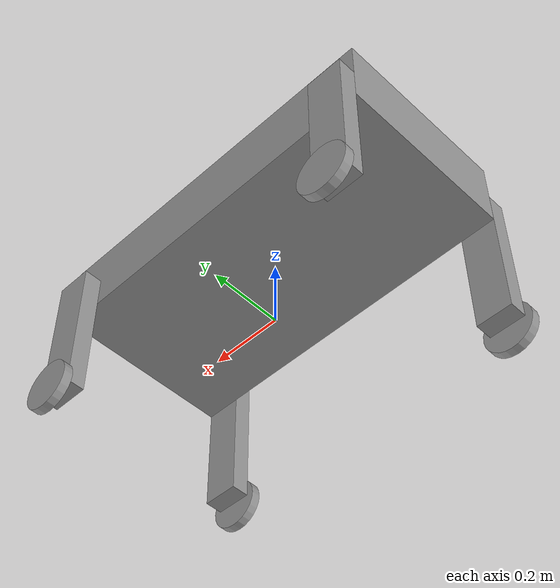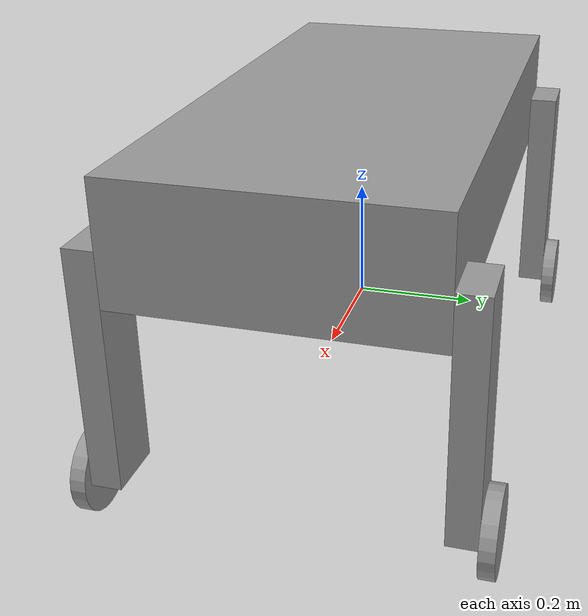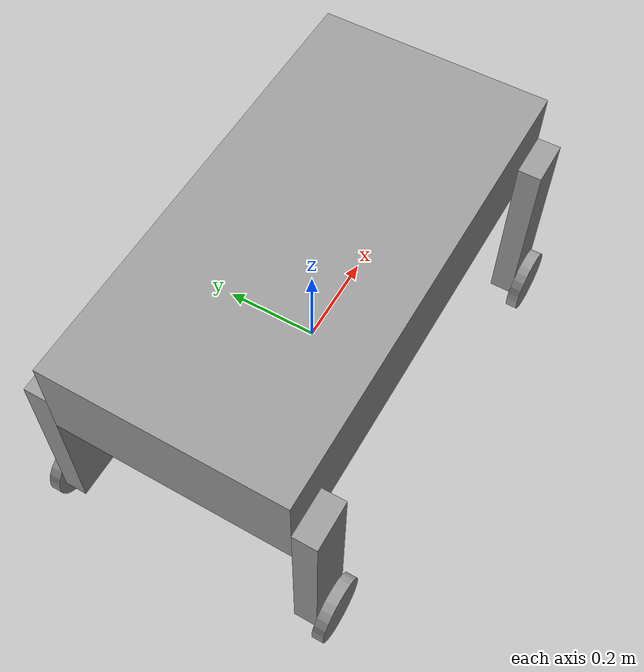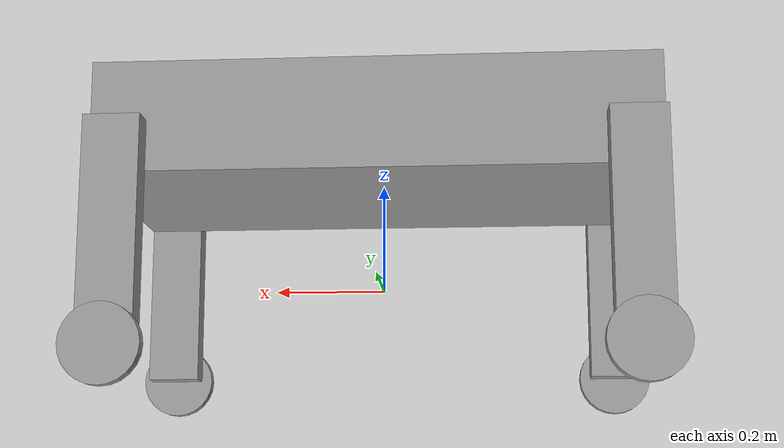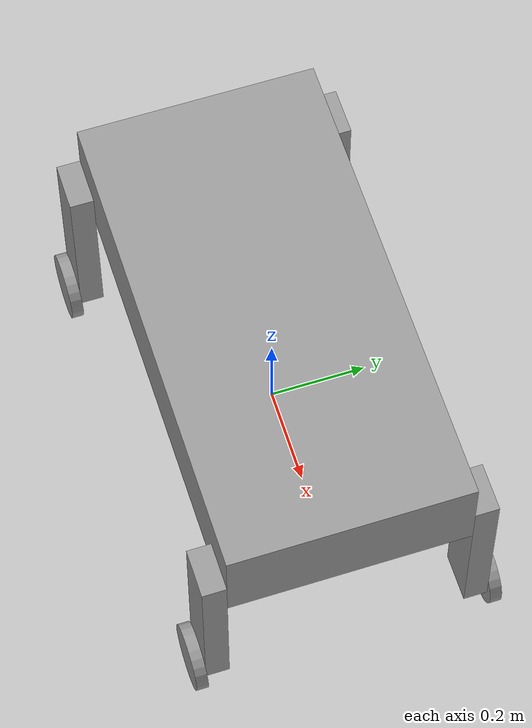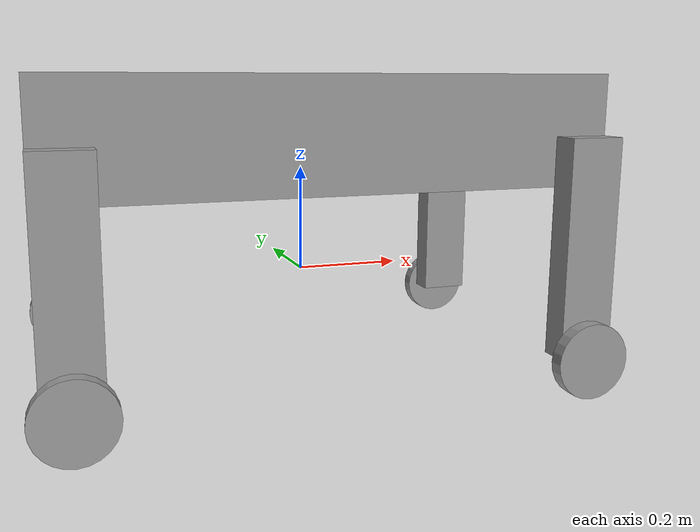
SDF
<?xml version='1.0'?>
<sdf version='1.6'>
  <model name='mybot'>
    <link name='link_0'>
      <pose frame=''>-1e-06 2e-06 0.2754 0 -0 0</pose>
      <inertial>
        <mass>1</mass>
        <inertia>
          <ixx>0.166667</ixx>
          <ixy>0</ixy>
          <ixz>0</ixz>
          <iyy>0.166667</iyy>
          <iyz>0</iyz>
          <izz>0.166667</izz>
        </inertia>
        <pose frame=''>0 0 0 0 -0 0</pose>
      </inertial>
      <gravity>1</gravity>
      <self_collide>0</self_collide>
      <kinematic>0</kinematic>
      <visual name='visual'>
        <pose frame=''>0 0 0 0 -0 0</pose>
        <geometry>
          <box>
            <size>1 0.5 0.2</size>
          </box>
        </geometry>
        <material>
          <lighting>1</lighting>
          <script>
            <uri>file://media/materials/scripts/gazebo.material</uri>
            <name>Gazebo/Grey</name>
          </script>
          <shader type='pixel'>
            <normal_map>__default__</normal_map>
          </shader>
          <ambient>0.3 0.3 0.3 1</ambient>
          <diffuse>0.7 0.7 0.7 1</diffuse>
          <specular>0.01 0.01 0.01 1</specular>
          <emissive>0 0 0 1</emissive>
        </material>
        <transparency>0</transparency>
        <cast_shadows>1</cast_shadows>
      </visual>
      <collision name='collision'>
        <laser_retro>0</laser_retro>
        <max_contacts>10</max_contacts>
        <pose frame=''>0 0 0 0 -0 0</pose>
        <geometry>
          <box>
            <size>1 0.5 0.2</size>
          </box>
        </geometry>
        <surface>
          <friction>
            <ode>
              <mu>1</mu>
              <mu2>1</mu2>
              <fdir1>0 0 0</fdir1>
              <slip1>0</slip1>
              <slip2>0</slip2>
            </ode>
            <torsional>
              <coefficient>1</coefficient>
              <patch_radius>0</patch_radius>
              <surface_radius>0</surface_radius>
              <use_patch_radius>1</use_patch_radius>
              <ode>
                <slip>0</slip>
              </ode>
            </torsional>
          </friction>
          <bounce>
            <restitution_coefficient>0</restitution_coefficient>
            <threshold>1e+06</threshold>
          </bounce>
          <contact>
            <collide_without_contact>0</collide_without_contact>
            <collide_without_contact_bitmask>1</collide_without_contact_bitmask>
            <collide_bitmask>1</collide_bitmask>
            <ode>
              <soft_cfm>0</soft_cfm>
              <soft_erp>0.2</soft_erp>
              <kp>1e+13</kp>
              <kd>1</kd>
              <max_vel>0.01</max_vel>
              <min_depth>0</min_depth>
            </ode>
            <bullet>
              <split_impulse>1</split_impulse>
              <split_impulse_penetration_threshold>-0.01</split_impulse_penetration_threshold>
              <soft_cfm>0</soft_cfm>
              <soft_erp>0.2</soft_erp>
              <kp>1e+13</kp>
              <kd>1</kd>
            </bullet>
          </contact>
        </surface>
      </collision>
    </link>
    <link name='link_1_clone'>
      <pose frame=''>-0.449999 -0.274998 0.065575 0 -0 0</pose>
      <inertial>
        <mass>1</mass>
        <inertia>
          <ixx>0.166667</ixx>
          <ixy>0</ixy>
          <ixz>0</ixz>
          <iyy>0.166667</iyy>
          <iyz>0</iyz>
          <izz>0.166667</izz>
        </inertia>
        <pose frame=''>0 0 0 0 -0 0</pose>
      </inertial>
      <self_collide>0</self_collide>
      <kinematic>0</kinematic>
      <gravity>1</gravity>
      <visual name='visual'>
        <pose frame=''>0 0 0 0 -0 0</pose>
        <geometry>
          <box>
            <size>0.1 0.05 0.4</size>
          </box>
        </geometry>
        <material>
          <lighting>1</lighting>
          <script>
            <uri>file://media/materials/scripts/gazebo.material</uri>
            <name>Gazebo/Grey</name>
          </script>
          <shader type='pixel'>
            <normal_map>__default__</normal_map>
          </shader>
          <ambient>0.3 0.3 0.3 1</ambient>
          <diffuse>0.7 0.7 0.7 1</diffuse>
          <specular>0.01 0.01 0.01 1</specular>
          <emissive>0 0 0 1</emissive>
        </material>
        <transparency>0</transparency>
        <cast_shadows>1</cast_shadows>
      </visual>
      <collision name='collision'>
        <laser_retro>0</laser_retro>
        <max_contacts>10</max_contacts>
        <pose frame=''>0 0 0 0 -0 0</pose>
        <geometry>
          <box>
            <size>0.1 0.05 0.4</size>
          </box>
        </geometry>
        <surface>
          <friction>
            <ode>
              <mu>1</mu>
              <mu2>1</mu2>
              <fdir1>0 0 0</fdir1>
              <slip1>0</slip1>
              <slip2>0</slip2>
            </ode>
            <torsional>
              <coefficient>1</coefficient>
              <patch_radius>0</patch_radius>
              <surface_radius>0</surface_radius>
              <use_patch_radius>1</use_patch_radius>
              <ode>
                <slip>0</slip>
              </ode>
            </torsional>
          </friction>
          <bounce>
            <restitution_coefficient>0</restitution_coefficient>
            <threshold>1e+06</threshold>
          </bounce>
          <contact>
            <collide_without_contact>0</collide_without_contact>
            <collide_without_contact_bitmask>1</collide_without_contact_bitmask>
            <collide_bitmask>1</collide_bitmask>
            <ode>
              <soft_cfm>0</soft_cfm>
              <soft_erp>0.2</soft_erp>
              <kp>1e+13</kp>
              <kd>1</kd>
              <max_vel>0.01</max_vel>
              <min_depth>0</min_depth>
            </ode>
            <bullet>
              <split_impulse>1</split_impulse>
              <split_impulse_penetration_threshold>-0.01</split_impulse_penetration_threshold>
              <soft_cfm>0</soft_cfm>
              <soft_erp>0.2</soft_erp>
              <kp>1e+13</kp>
              <kd>1</kd>
            </bullet>
          </contact>
        </surface>
      </collision>
    </link>
    <link name='link_1_clone_clone'>
      <pose frame=''>0.45 -0.274998 0.065575 0 -0 0</pose>
      <inertial>
        <mass>1</mass>
        <inertia>
          <ixx>0.166667</ixx>
          <ixy>0</ixy>
          <ixz>0</ixz>
          <iyy>0.166667</iyy>
          <iyz>0</iyz>
          <izz>0.166667</izz>
        </inertia>
        <pose frame=''>0 0 0 0 -0 0</pose>
      </inertial>
      <self_collide>0</self_collide>
      <kinematic>0</kinematic>
      <visual name='visual'>
        <pose frame=''>0 0 0 0 -0 0</pose>
        <geometry>
          <box>
            <size>0.1 0.05 0.4</size>
          </box>
        </geometry>
        <material>
          <lighting>1</lighting>
          <script>
            <uri>file://media/materials/scripts/gazebo.material</uri>
            <name>Gazebo/Grey</name>
          </script>
          <shader type='pixel'>
            <normal_map>__default__</normal_map>
          </shader>
          <ambient>0.3 0.3 0.3 1</ambient>
          <diffuse>0.7 0.7 0.7 1</diffuse>
          <specular>0.01 0.01 0.01 1</specular>
          <emissive>0 0 0 1</emissive>
        </material>
        <transparency>0</transparency>
        <cast_shadows>1</cast_shadows>
      </visual>
      <collision name='collision'>
        <laser_retro>0</laser_retro>
        <max_contacts>10</max_contacts>
        <pose frame=''>0 0 0 0 -0 0</pose>
        <geometry>
          <box>
            <size>0.1 0.05 0.4</size>
          </box>
        </geometry>
        <surface>
          <friction>
            <ode>
              <mu>1</mu>
              <mu2>1</mu2>
              <fdir1>0 0 0</fdir1>
              <slip1>0</slip1>
              <slip2>0</slip2>
            </ode>
            <torsional>
              <coefficient>1</coefficient>
              <patch_radius>0</patch_radius>
              <surface_radius>0</surface_radius>
              <use_patch_radius>1</use_patch_radius>
              <ode>
                <slip>0</slip>
              </ode>
            </torsional>
          </friction>
          <bounce>
            <restitution_coefficient>0</restitution_coefficient>
            <threshold>1e+06</threshold>
          </bounce>
          <contact>
            <collide_without_contact>0</collide_without_contact>
            <collide_without_contact_bitmask>1</collide_without_contact_bitmask>
            <collide_bitmask>1</collide_bitmask>
            <ode>
              <soft_cfm>0</soft_cfm>
              <soft_erp>0.2</soft_erp>
              <kp>1e+13</kp>
              <kd>1</kd>
              <max_vel>0.01</max_vel>
              <min_depth>0</min_depth>
            </ode>
            <bullet>
              <split_impulse>1</split_impulse>
              <split_impulse_penetration_threshold>-0.01</split_impulse_penetration_threshold>
              <soft_cfm>0</soft_cfm>
              <soft_erp>0.2</soft_erp>
              <kp>1e+13</kp>
              <kd>1</kd>
            </bullet>
          </contact>
        </surface>
      </collision>
    </link>
    <link name='link_1_clone_clone_clone'>
      <pose frame=''>-0.450001 0.275002 0.065575 0 -0 0</pose>
      <inertial>
        <mass>1</mass>
        <inertia>
          <ixx>0.166667</ixx>
          <ixy>0</ixy>
          <ixz>0</ixz>
          <iyy>0.166667</iyy>
          <iyz>0</iyz>
          <izz>0.166667</izz>
        </inertia>
        <pose frame=''>0 0 0 0 -0 0</pose>
      </inertial>
      <self_collide>0</self_collide>
      <kinematic>0</kinematic>
      <visual name='visual'>
        <pose frame=''>0 0 0 0 -0 0</pose>
        <geometry>
          <box>
            <size>0.1 0.05 0.4</size>
          </box>
        </geometry>
        <material>
          <lighting>1</lighting>
          <script>
            <uri>file://media/materials/scripts/gazebo.material</uri>
            <name>Gazebo/Grey</name>
          </script>
          <shader type='pixel'>
            <normal_map>__default__</normal_map>
          </shader>
          <ambient>0.3 0.3 0.3 1</ambient>
          <diffuse>0.7 0.7 0.7 1</diffuse>
          <specular>0.01 0.01 0.01 1</specular>
          <emissive>0 0 0 1</emissive>
        </material>
        <transparency>0</transparency>
        <cast_shadows>1</cast_shadows>
      </visual>
      <collision name='collision'>
        <laser_retro>0</laser_retro>
        <max_contacts>10</max_contacts>
        <pose frame=''>0 0 0 0 -0 0</pose>
        <geometry>
          <box>
            <size>0.1 0.05 0.4</size>
          </box>
        </geometry>
        <surface>
          <friction>
            <ode>
              <mu>1</mu>
              <mu2>1</mu2>
              <fdir1>0 0 0</fdir1>
              <slip1>0</slip1>
              <slip2>0</slip2>
            </ode>
            <torsional>
              <coefficient>1</coefficient>
              <patch_radius>0</patch_radius>
              <surface_radius>0</surface_radius>
              <use_patch_radius>1</use_patch_radius>
              <ode>
                <slip>0</slip>
              </ode>
            </torsional>
          </friction>
          <bounce>
            <restitution_coefficient>0</restitution_coefficient>
            <threshold>1e+06</threshold>
          </bounce>
          <contact>
            <collide_without_contact>0</collide_without_contact>
            <collide_without_contact_bitmask>1</collide_without_contact_bitmask>
            <collide_bitmask>1</collide_bitmask>
            <ode>
              <soft_cfm>0</soft_cfm>
              <soft_erp>0.2</soft_erp>
              <kp>1e+13</kp>
              <kd>1</kd>
              <max_vel>0.01</max_vel>
              <min_depth>0</min_depth>
            </ode>
            <bullet>
              <split_impulse>1</split_impulse>
              <split_impulse_penetration_threshold>-0.01</split_impulse_penetration_threshold>
              <soft_cfm>0</soft_cfm>
              <soft_erp>0.2</soft_erp>
              <kp>1e+13</kp>
              <kd>1</kd>
            </bullet>
          </contact>
        </surface>
      </collision>
    </link>
    <link name='link_1_clone_clone_clone_clone'>
      <pose frame=''>0.45 0.275002 0.065575 0 -0 0</pose>
      <inertial>
        <mass>1</mass>
        <inertia>
          <ixx>0.166667</ixx>
          <ixy>0</ixy>
          <ixz>0</ixz>
          <iyy>0.166667</iyy>
          <iyz>0</iyz>
          <izz>0.166667</izz>
        </inertia>
        <pose frame=''>0 0 0 0 -0 0</pose>
      </inertial>
      <self_collide>0</self_collide>
      <kinematic>0</kinematic>
      <gravity>1</gravity>
      <visual name='visual'>
        <pose frame=''>0 0 0 0 -0 0</pose>
        <geometry>
          <box>
            <size>0.1 0.05 0.4</size>
          </box>
        </geometry>
        <material>
          <lighting>1</lighting>
          <script>
            <uri>file://media/materials/scripts/gazebo.material</uri>
            <name>Gazebo/Grey</name>
          </script>
          <shader type='pixel'>
            <normal_map>__default__</normal_map>
          </shader>
          <ambient>0.3 0.3 0.3 1</ambient>
          <diffuse>0.7 0.7 0.7 1</diffuse>
          <specular>0.01 0.01 0.01 1</specular>
          <emissive>0 0 0 1</emissive>
        </material>
        <transparency>0</transparency>
        <cast_shadows>1</cast_shadows>
      </visual>
      <collision name='collision'>
        <laser_retro>0</laser_retro>
        <max_contacts>10</max_contacts>
        <pose frame=''>0 0 0 0 -0 0</pose>
        <geometry>
          <box>
            <size>0.1 0.05 0.4</size>
          </box>
        </geometry>
        <surface>
          <friction>
            <ode>
              <mu>1</mu>
              <mu2>1</mu2>
              <fdir1>0 0 0</fdir1>
              <slip1>0</slip1>
              <slip2>0</slip2>
            </ode>
            <torsional>
              <coefficient>1</coefficient>
              <patch_radius>0</patch_radius>
              <surface_radius>0</surface_radius>
              <use_patch_radius>1</use_patch_radius>
              <ode>
                <slip>0</slip>
              </ode>
            </torsional>
          </friction>
          <bounce>
            <restitution_coefficient>0</restitution_coefficient>
            <threshold>1e+06</threshold>
          </bounce>
          <contact>
            <collide_without_contact>0</collide_without_contact>
            <collide_without_contact_bitmask>1</collide_without_contact_bitmask>
            <collide_bitmask>1</collide_bitmask>
            <ode>
              <soft_cfm>0</soft_cfm>
              <soft_erp>0.2</soft_erp>
              <kp>1e+13</kp>
              <kd>1</kd>
              <max_vel>0.01</max_vel>
              <min_depth>0</min_depth>
            </ode>
            <bullet>
              <split_impulse>1</split_impulse>
              <split_impulse_penetration_threshold>-0.01</split_impulse_penetration_threshold>
              <soft_cfm>0</soft_cfm>
              <soft_erp>0.2</soft_erp>
              <kp>1e+13</kp>
              <kd>1</kd>
            </bullet>
          </contact>
        </surface>
      </collision>
    </link>
    <link name='link_3_clone'>
      <pose frame=''>0.45 0.312542 -0.134425 1.57 -0 0</pose>
      <inertial>
        <mass>1</mass>
        <inertia>
          <ixx>0.145833</ixx>
          <ixy>0</ixy>
          <ixz>0</ixz>
          <iyy>0.145833</iyy>
          <iyz>0</iyz>
          <izz>0.125</izz>
        </inertia>
        <pose frame=''>0 0 0 0 -0 0</pose>
      </inertial>
      <self_collide>0</self_collide>
      <kinematic>0</kinematic>
      <gravity>1</gravity>
      <visual name='visual'>
        <pose frame=''>0 0 0 0 -0 0</pose>
        <geometry>
          <cylinder>
            <radius>0.07</radius>
            <length>0.025</length>
          </cylinder>
        </geometry>
        <material>
          <lighting>1</lighting>
          <script>
            <uri>file://media/materials/scripts/gazebo.material</uri>
            <name>Gazebo/Grey</name>
          </script>
          <shader type='pixel'>
            <normal_map>__default__</normal_map>
          </shader>
          <ambient>0.3 0.3 0.3 1</ambient>
          <diffuse>0.7 0.7 0.7 1</diffuse>
          <specular>0.01 0.01 0.01 1</specular>
          <emissive>0 0 0 1</emissive>
        </material>
        <transparency>0</transparency>
        <cast_shadows>1</cast_shadows>
      </visual>
      <collision name='collision'>
        <laser_retro>0</laser_retro>
        <max_contacts>10</max_contacts>
        <pose frame=''>0 0 0 0 -0 0</pose>
        <geometry>
          <cylinder>
            <radius>0.07</radius>
            <length>0.025</length>
          </cylinder>
        </geometry>
        <surface>
          <friction>
            <ode>
              <mu>1</mu>
              <mu2>1</mu2>
              <fdir1>0 0 0</fdir1>
              <slip1>0</slip1>
              <slip2>0</slip2>
            </ode>
            <torsional>
              <coefficient>1</coefficient>
              <patch_radius>0</patch_radius>
              <surface_radius>0</surface_radius>
              <use_patch_radius>1</use_patch_radius>
              <ode>
                <slip>0</slip>
              </ode>
            </torsional>
          </friction>
          <bounce>
            <restitution_coefficient>0</restitution_coefficient>
            <threshold>1e+06</threshold>
          </bounce>
          <contact>
            <collide_without_contact>0</collide_without_contact>
            <collide_without_contact_bitmask>1</collide_without_contact_bitmask>
            <collide_bitmask>1</collide_bitmask>
            <ode>
              <soft_cfm>0</soft_cfm>
              <soft_erp>0.2</soft_erp>
              <kp>1e+13</kp>
              <kd>1</kd>
              <max_vel>0.01</max_vel>
              <min_depth>0</min_depth>
            </ode>
            <bullet>
              <split_impulse>1</split_impulse>
              <split_impulse_penetration_threshold>-0.01</split_impulse_penetration_threshold>
              <soft_cfm>0</soft_cfm>
              <soft_erp>0.2</soft_erp>
              <kp>1e+13</kp>
              <kd>1</kd>
            </bullet>
          </contact>
        </surface>
      </collision>
    </link>
    <link name='link_3_clone_clone'>
      <pose frame=''>-0.450001 0.312558 -0.134425 1.57 -0 0</pose>
      <inertial>
        <mass>1</mass>
        <inertia>
          <ixx>0.145833</ixx>
          <ixy>0</ixy>
          <ixz>0</ixz>
          <iyy>0.145833</iyy>
          <iyz>0</iyz>
          <izz>0.125</izz>
        </inertia>
        <pose frame=''>0 0 0 0 -0 0</pose>
      </inertial>
      <self_collide>0</self_collide>
      <kinematic>0</kinematic>
      <visual name='visual'>
        <pose frame=''>0 0 0 0 -0 0</pose>
        <geometry>
          <cylinder>
            <radius>0.07</radius>
            <length>0.025</length>
          </cylinder>
        </geometry>
        <material>
          <lighting>1</lighting>
          <script>
            <uri>file://media/materials/scripts/gazebo.material</uri>
            <name>Gazebo/Grey</name>
          </script>
          <shader type='pixel'>
            <normal_map>__default__</normal_map>
          </shader>
          <ambient>0.3 0.3 0.3 1</ambient>
          <diffuse>0.7 0.7 0.7 1</diffuse>
          <specular>0.01 0.01 0.01 1</specular>
          <emissive>0 0 0 1</emissive>
        </material>
        <transparency>0</transparency>
        <cast_shadows>1</cast_shadows>
      </visual>
      <collision name='collision'>
        <laser_retro>0</laser_retro>
        <max_contacts>10</max_contacts>
        <pose frame=''>0 0 0 0 -0 0</pose>
        <geometry>
          <cylinder>
            <radius>0.07</radius>
            <length>0.025</length>
          </cylinder>
        </geometry>
        <surface>
          <friction>
            <ode>
              <mu>1</mu>
              <mu2>1</mu2>
              <fdir1>0 0 0</fdir1>
              <slip1>0</slip1>
              <slip2>0</slip2>
            </ode>
            <torsional>
              <coefficient>1</coefficient>
              <patch_radius>0</patch_radius>
              <surface_radius>0</surface_radius>
              <use_patch_radius>1</use_patch_radius>
              <ode>
                <slip>0</slip>
              </ode>
            </torsional>
          </friction>
          <bounce>
            <restitution_coefficient>0</restitution_coefficient>
            <threshold>1e+06</threshold>
          </bounce>
          <contact>
            <collide_without_contact>0</collide_without_contact>
            <collide_without_contact_bitmask>1</collide_without_contact_bitmask>
            <collide_bitmask>1</collide_bitmask>
            <ode>
              <soft_cfm>0</soft_cfm>
              <soft_erp>0.2</soft_erp>
              <kp>1e+13</kp>
              <kd>1</kd>
              <max_vel>0.01</max_vel>
              <min_depth>0</min_depth>
            </ode>
            <bullet>
              <split_impulse>1</split_impulse>
              <split_impulse_penetration_threshold>-0.01</split_impulse_penetration_threshold>
              <soft_cfm>0</soft_cfm>
              <soft_erp>0.2</soft_erp>
              <kp>1e+13</kp>
              <kd>1</kd>
            </bullet>
          </contact>
        </surface>
      </collision>
    </link>
    <link name='link_3_clone_clone_0'>
      <pose frame=''>0.45 -0.312554 -0.134425 1.57 -0 0</pose>
      <inertial>
        <mass>1</mass>
        <inertia>
          <ixx>0.145833</ixx>
          <ixy>0</ixy>
          <ixz>0</ixz>
          <iyy>0.145833</iyy>
          <iyz>0</iyz>
          <izz>0.125</izz>
        </inertia>
        <pose frame=''>0 0 0 0 -0 0</pose>
      </inertial>
      <self_collide>0</self_collide>
      <kinematic>0</kinematic>
      <visual name='visual'>
        <pose frame=''>0 0 0 0 -0 0</pose>
        <geometry>
          <cylinder>
            <radius>0.07</radius>
            <length>0.025</length>
          </cylinder>
        </geometry>
        <material>
          <lighting>1</lighting>
          <script>
            <uri>file://media/materials/scripts/gazebo.material</uri>
            <name>Gazebo/Grey</name>
          </script>
          <shader type='pixel'>
            <normal_map>__default__</normal_map>
          </shader>
          <ambient>0.3 0.3 0.3 1</ambient>
          <diffuse>0.7 0.7 0.7 1</diffuse>
          <specular>0.01 0.01 0.01 1</specular>
          <emissive>0 0 0 1</emissive>
        </material>
        <transparency>0</transparency>
        <cast_shadows>1</cast_shadows>
      </visual>
      <collision name='collision'>
        <laser_retro>0</laser_retro>
        <max_contacts>10</max_contacts>
        <pose frame=''>0 0 0 0 -0 0</pose>
        <geometry>
          <cylinder>
            <radius>0.07</radius>
            <length>0.025</length>
          </cylinder>
        </geometry>
        <surface>
          <friction>
            <ode>
              <mu>1</mu>
              <mu2>1</mu2>
              <fdir1>0 0 0</fdir1>
              <slip1>0</slip1>
              <slip2>0</slip2>
            </ode>
            <torsional>
              <coefficient>1</coefficient>
              <patch_radius>0</patch_radius>
              <surface_radius>0</surface_radius>
              <use_patch_radius>1</use_patch_radius>
              <ode>
                <slip>0</slip>
              </ode>
            </torsional>
          </friction>
          <bounce>
            <restitution_coefficient>0</restitution_coefficient>
            <threshold>1e+06</threshold>
          </bounce>
          <contact>
            <collide_without_contact>0</collide_without_contact>
            <collide_without_contact_bitmask>1</collide_without_contact_bitmask>
            <collide_bitmask>1</collide_bitmask>
            <ode>
              <soft_cfm>0</soft_cfm>
              <soft_erp>0.2</soft_erp>
              <kp>1e+13</kp>
              <kd>1</kd>
              <max_vel>0.01</max_vel>
              <min_depth>0</min_depth>
            </ode>
            <bullet>
              <split_impulse>1</split_impulse>
              <split_impulse_penetration_threshold>-0.01</split_impulse_penetration_threshold>
              <soft_cfm>0</soft_cfm>
              <soft_erp>0.2</soft_erp>
              <kp>1e+13</kp>
              <kd>1</kd>
            </bullet>
          </contact>
        </surface>
      </collision>
    </link>
    <link name='link_3_clone_clone_0_clone'>
      <pose frame=''>-0.449999 -0.312553 -0.134425 1.57 -0 0</pose>
      <inertial>
        <mass>1</mass>
        <inertia>
          <ixx>0.145833</ixx>
          <ixy>0</ixy>
          <ixz>0</ixz>
          <iyy>0.145833</iyy>
          <iyz>0</iyz>
          <izz>0.125</izz>
        </inertia>
        <pose frame=''>0 0 0 0 -0 0</pose>
      </inertial>
      <self_collide>0</self_collide>
      <kinematic>0</kinematic>
      <visual name='visual'>
        <pose frame=''>0 0 0 0 -0 0</pose>
        <geometry>
          <cylinder>
            <radius>0.07</radius>
            <length>0.025</length>
          </cylinder>
        </geometry>
        <material>
          <lighting>1</lighting>
          <script>
            <uri>file://media/materials/scripts/gazebo.material</uri>
            <name>Gazebo/Grey</name>
          </script>
          <shader type='pixel'>
            <normal_map>__default__</normal_map>
          </shader>
          <ambient>0.3 0.3 0.3 1</ambient>
          <diffuse>0.7 0.7 0.7 1</diffuse>
          <specular>0.01 0.01 0.01 1</specular>
          <emissive>0 0 0 1</emissive>
        </material>
        <transparency>0</transparency>
        <cast_shadows>1</cast_shadows>
      </visual>
      <collision name='collision'>
        <laser_retro>0</laser_retro>
        <max_contacts>10</max_contacts>
        <pose frame=''>0 0 0 0 -0 0</pose>
        <geometry>
          <cylinder>
            <radius>0.07</radius>
            <length>0.025</length>
          </cylinder>
        </geometry>
        <surface>
          <friction>
            <ode>
              <mu>1</mu>
              <mu2>1</mu2>
              <fdir1>0 0 0</fdir1>
              <slip1>0</slip1>
              <slip2>0</slip2>
            </ode>
            <torsional>
              <coefficient>1</coefficient>
              <patch_radius>0</patch_radius>
              <surface_radius>0</surface_radius>
              <use_patch_radius>1</use_patch_radius>
              <ode>
                <slip>0</slip>
              </ode>
            </torsional>
          </friction>
          <bounce>
            <restitution_coefficient>0</restitution_coefficient>
            <threshold>1e+06</threshold>
          </bounce>
          <contact>
            <collide_without_contact>0</collide_without_contact>
            <collide_without_contact_bitmask>1</collide_without_contact_bitmask>
            <collide_bitmask>1</collide_bitmask>
            <ode>
              <soft_cfm>0</soft_cfm>
              <soft_erp>0.2</soft_erp>
              <kp>1e+13</kp>
              <kd>1</kd>
              <max_vel>0.01</max_vel>
              <min_depth>0</min_depth>
            </ode>
            <bullet>
              <split_impulse>1</split_impulse>
              <split_impulse_penetration_threshold>-0.01</split_impulse_penetration_threshold>
              <soft_cfm>0</soft_cfm>
              <soft_erp>0.2</soft_erp>
              <kp>1e+13</kp>
              <kd>1</kd>
            </bullet>
          </contact>
        </surface>
      </collision>
    </link>
    <joint name='link_0_JOINT_1' type='revolute'>
      <parent>link_0</parent>
      <child>link_1_clone</child>
      <pose frame=''>0 0 0.15 0 -0 0</pose>
      <axis>
        <xyz>0 1 0</xyz>
        <use_parent_model_frame>0</use_parent_model_frame>
        <limit>
          <lower>-1.79769e+308</lower>
          <upper>1.79769e+308</upper>
          <effort>-1</effort>
          <velocity>-1</velocity>
        </limit>
        <dynamics>
          <spring_reference>0</spring_reference>
          <spring_stiffness>0</spring_stiffness>
          <damping>0</damping>
          <friction>0</friction>
        </dynamics>
      </axis>
      <physics>
        <ode>
          <limit>
            <cfm>0</cfm>
            <erp>0.2</erp>
          </limit>
          <suspension>
            <cfm>0</cfm>
            <erp>0.2</erp>
          </suspension>
        </ode>
      </physics>
    </joint>
    <joint name='link_0_JOINT_3' type='revolute'>
      <parent>link_0</parent>
      <child>link_1_clone_clone</child>
      <pose frame=''>0 0 0.15 0 -0 0</pose>
      <axis>
        <xyz>0 1 0</xyz>
        <use_parent_model_frame>0</use_parent_model_frame>
        <limit>
          <lower>-1.79769e+308</lower>
          <upper>1.79769e+308</upper>
          <effort>-1</effort>
          <velocity>-1</velocity>
        </limit>
        <dynamics>
          <spring_reference>0</spring_reference>
          <spring_stiffness>0</spring_stiffness>
          <damping>0</damping>
        </dynamics>
      </axis>
      <physics>
        <ode>
          <limit>
            <cfm>0</cfm>
            <erp>0.2</erp>
          </limit>
          <suspension>
            <cfm>0</cfm>
            <erp>0.2</erp>
          </suspension>
        </ode>
      </physics>
    </joint>
    <joint name='link_0_JOINT_4' type='revolute'>
      <parent>link_0</parent>
      <child>link_1_clone_clone_clone</child>
      <pose frame=''>0 0 0.15 0 -0 0</pose>
      <axis>
        <xyz>-0 -1 -0</xyz>
        <use_parent_model_frame>0</use_parent_model_frame>
        <limit>
          <lower>-1.79769e+308</lower>
          <upper>1.79769e+308</upper>
          <effort>-1</effort>
          <velocity>-1</velocity>
        </limit>
        <dynamics>
          <spring_reference>0</spring_reference>
          <spring_stiffness>0</spring_stiffness>
          <damping>0</damping>
        </dynamics>
      </axis>
      <physics>
        <ode>
          <limit>
            <cfm>0</cfm>
            <erp>0.2</erp>
          </limit>
          <suspension>
            <cfm>0</cfm>
            <erp>0.2</erp>
          </suspension>
        </ode>
      </physics>
    </joint>
    <joint name='link_0_JOINT_5' type='revolute'>
      <parent>link_0</parent>
      <child>link_1_clone_clone_clone_clone</child>
      <pose frame=''>0 0 0.15 0 -0 0</pose>
      <axis>
        <xyz>-0 -1 -0</xyz>
        <use_parent_model_frame>0</use_parent_model_frame>
        <limit>
          <lower>-1.79769e+308</lower>
          <upper>1.79769e+308</upper>
          <effort>-1</effort>
          <velocity>-1</velocity>
        </limit>
        <dynamics>
          <spring_reference>0</spring_reference>
          <spring_stiffness>0</spring_stiffness>
          <damping>0</damping>
        </dynamics>
      </axis>
      <physics>
        <ode>
          <limit>
            <cfm>0</cfm>
            <erp>0.2</erp>
          </limit>
          <suspension>
            <cfm>0</cfm>
            <erp>0.2</erp>
          </suspension>
        </ode>
      </physics>
    </joint>
    <joint name='link_1_clone_JOINT_9' type='revolute'>
      <parent>link_1_clone</parent>
      <child>link_3_clone_clone_0_clone</child>
      <pose frame=''>0 0 0 0 -0 0</pose>
      <axis>
        <xyz>-0 -0 -1</xyz>
        <use_parent_model_frame>0</use_parent_model_frame>
        <limit>
          <lower>-1.79769e+308</lower>
          <upper>1.79769e+308</upper>
          <effort>-1</effort>
          <velocity>-1</velocity>
        </limit>
        <dynamics>
          <spring_reference>0</spring_reference>
          <spring_stiffness>0</spring_stiffness>
          <damping>0</damping>
        </dynamics>
      </axis>
      <physics>
        <ode>
          <limit>
            <cfm>0</cfm>
            <erp>0.2</erp>
          </limit>
          <suspension>
            <cfm>0</cfm>
            <erp>0.2</erp>
          </suspension>
        </ode>
      </physics>
    </joint>
    <joint name='link_1_clone_clone_JOINT_8' type='revolute'>
      <parent>link_1_clone_clone</parent>
      <child>link_3_clone_clone_0</child>
      <pose frame=''>0 0 0 0 -0 0</pose>
      <axis>
        <xyz>-0 -0 -1</xyz>
        <use_parent_model_frame>0</use_parent_model_frame>
        <limit>
          <lower>-1.79769e+308</lower>
          <upper>1.79769e+308</upper>
          <effort>-1</effort>
          <velocity>-1</velocity>
        </limit>
        <dynamics>
          <spring_reference>0</spring_reference>
          <spring_stiffness>0</spring_stiffness>
          <damping>0</damping>
        </dynamics>
      </axis>
      <physics>
        <ode>
          <limit>
            <cfm>0</cfm>
            <erp>0.2</erp>
          </limit>
          <suspension>
            <cfm>0</cfm>
            <erp>0.2</erp>
          </suspension>
        </ode>
      </physics>
    </joint>
    <joint name='link_1_clone_clone_clone_JOINT_7' type='revolute'>
      <parent>link_1_clone_clone_clone</parent>
      <child>link_3_clone_clone</child>
      <pose frame=''>0 0 0 0 -0 0</pose>
      <axis>
        <xyz>0 0 1</xyz>
        <use_parent_model_frame>0</use_parent_model_frame>
        <limit>
          <lower>-1.79769e+308</lower>
          <upper>1.79769e+308</upper>
          <effort>-1</effort>
          <velocity>-1</velocity>
        </limit>
        <dynamics>
          <spring_reference>0</spring_reference>
          <spring_stiffness>0</spring_stiffness>
          <damping>0</damping>
        </dynamics>
      </axis>
      <physics>
        <ode>
          <limit>
            <cfm>0</cfm>
            <erp>0.2</erp>
          </limit>
          <suspension>
            <cfm>0</cfm>
            <erp>0.2</erp>
          </suspension>
        </ode>
      </physics>
    </joint>
    <joint name='link_1_clone_clone_clone_clone_JOINT_6' type='revolute'>
      <parent>link_1_clone_clone_clone_clone</parent>
      <child>link_3_clone</child>
      <pose frame=''>0 0 0 0 -0 0</pose>
      <axis>
        <xyz>0 0 1</xyz>
        <use_parent_model_frame>0</use_parent_model_frame>
        <limit>
          <lower>-1.79769e+308</lower>
          <upper>1.79769e+308</upper>
          <effort>-1</effort>
          <velocity>-1</velocity>
        </limit>
        <dynamics>
          <spring_reference>0</spring_reference>
          <spring_stiffness>0</spring_stiffness>
          <damping>0</damping>
          <friction>0</friction>
        </dynamics>
      </axis>
      <physics>
        <ode>
          <limit>
            <cfm>0</cfm>
            <erp>0.2</erp>
          </limit>
          <suspension>
            <cfm>0</cfm>
            <erp>0.2</erp>
          </suspension>
        </ode>
      </physics>
    </joint>
    <static>0</static>
    <allow_auto_disable>1</allow_auto_disable>
  </model>
</sdf>
